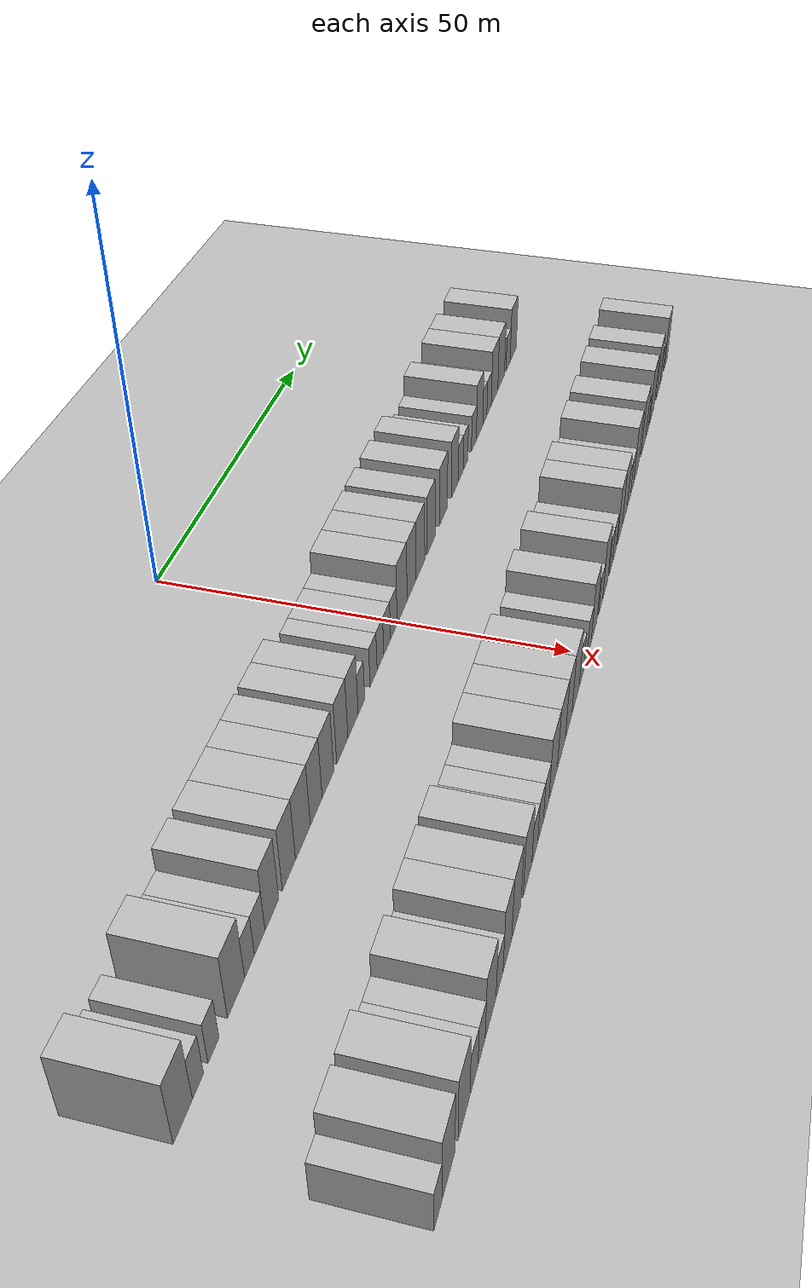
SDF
<sdf version="1.6">
 <world name="default">
  <include><name>ground_plane_1</name><uri>model://HANNAS_ground_plane</uri></include>
  <include>
   <name>ground_plane_2</name>
   <uri>model://HANNAS_ground_plane</uri>
   <pose>100 0 0  0 0 0</pose>
  </include>
  <model name="building_37">
   <static>1</static>
   <pose>25.0000 -64.8145 0 0.000000 0.000000 0.000000</pose>
   <link name="link">
    <pose>0 0 4.50 0 0 0</pose>
    <collision name="collision"><geometry><box><size>10.0000 4.0919 9.0000</size></box></geometry></collision>
    <visual name="visual">
     <cast_shadows>0</cast_shadows>
     <geometry><box><size>10.0000 4.0919 9.0000</size></box></geometry>
     <material>
      <script>
       <uri>model://HANNAS_wall/materials/scripts</uri>
       <uri>model://HANNAS_wall/materials/textures</uri>
       <name>vrc/HANNAS_wall</name>
      </script>
     </material>
    </visual>
   </link>
  </model>
  <model name="building_38">
   <static>1</static>
   <pose>25.0000 -61.5441 0 0.000000 0.000000 0.000000</pose>
   <link name="link">
    <pose>0 0 3.00 0 0 0</pose>
    <collision name="collision"><geometry><box><size>10.0000 2.4487 6.0000</size></box></geometry></collision>
    <visual name="visual">
     <cast_shadows>0</cast_shadows>
     <geometry><box><size>10.0000 2.4487 6.0000</size></box></geometry>
     <material>
      <script>
       <uri>model://HANNAS_wall/materials/scripts</uri>
       <uri>model://HANNAS_wall/materials/textures</uri>
       <name>vrc/HANNAS_wall</name>
      </script>
     </material>
    </visual>
   </link>
  </model>
  <model name="building_39">
   <static>1</static>
   <pose>25.0000 -58.0500 0 0.000000 0.000000 0.000000</pose>
   <link name="link">
    <pose>0 0 3.00 0 0 0</pose>
    <collision name="collision"><geometry><box><size>10.0000 2.5395 6.0000</size></box></geometry></collision>
    <visual name="visual">
     <cast_shadows>0</cast_shadows>
     <geometry><box><size>10.0000 2.5395 6.0000</size></box></geometry>
     <material>
      <script>
       <uri>model://HANNAS_wall/materials/scripts</uri>
       <uri>model://HANNAS_wall/materials/textures</uri>
       <name>vrc/HANNAS_wall</name>
      </script>
     </material>
    </visual>
   </link>
  </model>
  <model name="building_40">
   <static>1</static>
   <pose>25.0000 -52.6730 0 0.000000 0.000000 0.000000</pose>
   <link name="link">
    <pose>0 0 4.50 0 0 0</pose>
    <collision name="collision"><geometry><box><size>10.0000 4.2145 9.0000</size></box></geometry></collision>
    <visual name="visual">
     <cast_shadows>0</cast_shadows>
     <geometry><box><size>10.0000 4.2145 9.0000</size></box></geometry>
     <material>
      <script>
       <uri>model://HANNAS_wall/materials/scripts</uri>
       <uri>model://HANNAS_wall/materials/textures</uri>
       <name>vrc/HANNAS_wall</name>
      </script>
     </material>
    </visual>
   </link>
  </model>
  <model name="building_41">
   <static>1</static>
   <pose>25.0000 -49.3041 0 0.000000 0.000000 0.000000</pose>
   <link name="link">
    <pose>0 0 3.00 0 0 0</pose>
    <collision name="collision"><geometry><box><size>10.0000 2.5233 6.0000</size></box></geometry></collision>
    <visual name="visual">
     <cast_shadows>0</cast_shadows>
     <geometry><box><size>10.0000 2.5233 6.0000</size></box></geometry>
     <material>
      <script>
       <uri>model://HANNAS_wall/materials/scripts</uri>
       <uri>model://HANNAS_wall/materials/textures</uri>
       <name>vrc/HANNAS_wall</name>
      </script>
     </material>
    </visual>
   </link>
  </model>
  <model name="building_42">
   <static>1</static>
   <pose>25.0000 -46.6436 0 0.000000 0.000000 0.000000</pose>
   <link name="link">
    <pose>0 0 3.00 0 0 0</pose>
    <collision name="collision"><geometry><box><size>10.0000 2.7977 6.0000</size></box></geometry></collision>
    <visual name="visual">
     <cast_shadows>0</cast_shadows>
     <geometry><box><size>10.0000 2.7977 6.0000</size></box></geometry>
     <material>
      <script>
       <uri>model://HANNAS_wall/materials/scripts</uri>
       <uri>model://HANNAS_wall/materials/textures</uri>
       <name>vrc/HANNAS_wall</name>
      </script>
     </material>
    </visual>
   </link>
  </model>
  <model name="building_43">
   <static>1</static>
   <pose>25.0000 -43.3671 0 0.000000 0.000000 0.000000</pose>
   <link name="link">
    <pose>0 0 4.50 0 0 0</pose>
    <collision name="collision"><geometry><box><size>10.0000 3.7552 9.0000</size></box></geometry></collision>
    <visual name="visual">
     <cast_shadows>0</cast_shadows>
     <geometry><box><size>10.0000 3.7552 9.0000</size></box></geometry>
     <material>
      <script>
       <uri>model://HANNAS_wall/materials/scripts</uri>
       <uri>model://HANNAS_wall/materials/textures</uri>
       <name>vrc/HANNAS_wall</name>
      </script>
     </material>
    </visual>
   </link>
  </model>
  <model name="building_44">
   <static>1</static>
   <pose>25.0000 -38.5813 0 0.000000 0.000000 0.000000</pose>
   <link name="link">
    <pose>0 0 4.50 0 0 0</pose>
    <collision name="collision"><geometry><box><size>10.0000 3.8164 9.0000</size></box></geometry></collision>
    <visual name="visual">
     <cast_shadows>0</cast_shadows>
     <geometry><box><size>10.0000 3.8164 9.0000</size></box></geometry>
     <material>
      <script>
       <uri>model://HANNAS_wall/materials/scripts</uri>
       <uri>model://HANNAS_wall/materials/textures</uri>
       <name>vrc/HANNAS_wall</name>
      </script>
     </material>
    </visual>
   </link>
  </model>
  <model name="building_45">
   <static>1</static>
   <pose>25.0000 -34.4241 0 0.000000 0.000000 0.000000</pose>
   <link name="link">
    <pose>0 0 4.50 0 0 0</pose>
    <collision name="collision"><geometry><box><size>10.0000 4.4979 9.0000</size></box></geometry></collision>
    <visual name="visual">
     <cast_shadows>0</cast_shadows>
     <geometry><box><size>10.0000 4.4979 9.0000</size></box></geometry>
     <material>
      <script>
       <uri>model://HANNAS_wall/materials/scripts</uri>
       <uri>model://HANNAS_wall/materials/textures</uri>
       <name>vrc/HANNAS_wall</name>
      </script>
     </material>
    </visual>
   </link>
  </model>
  <model name="building_46">
   <static>1</static>
   <pose>25.0000 -30.3159 0 0.000000 0.000000 0.000000</pose>
   <link name="link">
    <pose>0 0 4.50 0 0 0</pose>
    <collision name="collision"><geometry><box><size>10.0000 3.7186 9.0000</size></box></geometry></collision>
    <visual name="visual">
     <cast_shadows>0</cast_shadows>
     <geometry><box><size>10.0000 3.7186 9.0000</size></box></geometry>
     <material>
      <script>
       <uri>model://HANNAS_wall/materials/scripts</uri>
       <uri>model://HANNAS_wall/materials/textures</uri>
       <name>vrc/HANNAS_wall</name>
      </script>
     </material>
    </visual>
   </link>
  </model>
  <model name="building_47">
   <static>1</static>
   <pose>25.0000 -26.5537 0 0.000000 0.000000 0.000000</pose>
   <link name="link">
    <pose>0 0 4.50 0 0 0</pose>
    <collision name="collision"><geometry><box><size>10.0000 3.8057 9.0000</size></box></geometry></collision>
    <visual name="visual">
     <cast_shadows>0</cast_shadows>
     <geometry><box><size>10.0000 3.8057 9.0000</size></box></geometry>
     <material>
      <script>
       <uri>model://HANNAS_wall/materials/scripts</uri>
       <uri>model://HANNAS_wall/materials/textures</uri>
       <name>vrc/HANNAS_wall</name>
      </script>
     </material>
    </visual>
   </link>
  </model>
  <model name="building_48">
   <static>1</static>
   <pose>25.0000 -21.7236 0 0.000000 0.000000 0.000000</pose>
   <link name="link">
    <pose>0 0 4.50 0 0 0</pose>
    <collision name="collision"><geometry><box><size>10.0000 3.8544 9.0000</size></box></geometry></collision>
    <visual name="visual">
     <cast_shadows>0</cast_shadows>
     <geometry><box><size>10.0000 3.8544 9.0000</size></box></geometry>
     <material>
      <script>
       <uri>model://HANNAS_wall/materials/scripts</uri>
       <uri>model://HANNAS_wall/materials/textures</uri>
       <name>vrc/HANNAS_wall</name>
      </script>
     </material>
    </visual>
   </link>
  </model>
  <model name="building_49">
   <static>1</static>
   <pose>25.0000 -17.9670 0 0.000000 0.000000 0.000000</pose>
   <link name="link">
    <pose>0 0 4.50 0 0 0</pose>
    <collision name="collision"><geometry><box><size>10.0000 3.6589 9.0000</size></box></geometry></collision>
    <visual name="visual">
     <cast_shadows>0</cast_shadows>
     <geometry><box><size>10.0000 3.6589 9.0000</size></box></geometry>
     <material>
      <script>
       <uri>model://HANNAS_wall/materials/scripts</uri>
       <uri>model://HANNAS_wall/materials/textures</uri>
       <name>vrc/HANNAS_wall</name>
      </script>
     </material>
    </visual>
   </link>
  </model>
  <model name="building_50">
   <static>1</static>
   <pose>25.0000 -14.9237 0 0.000000 0.000000 0.000000</pose>
   <link name="link">
    <pose>0 0 3.00 0 0 0</pose>
    <collision name="collision"><geometry><box><size>10.0000 2.4276 6.0000</size></box></geometry></collision>
    <visual name="visual">
     <cast_shadows>0</cast_shadows>
     <geometry><box><size>10.0000 2.4276 6.0000</size></box></geometry>
     <material>
      <script>
       <uri>model://HANNAS_wall/materials/scripts</uri>
       <uri>model://HANNAS_wall/materials/textures</uri>
       <name>vrc/HANNAS_wall</name>
      </script>
     </material>
    </visual>
   </link>
  </model>
  <model name="building_51">
   <static>1</static>
   <pose>25.0000 -10.3526 0 0.000000 0.000000 0.000000</pose>
   <link name="link">
    <pose>0 0 3.00 0 0 0</pose>
    <collision name="collision"><geometry><box><size>10.0000 2.7147 6.0000</size></box></geometry></collision>
    <visual name="visual">
     <cast_shadows>0</cast_shadows>
     <geometry><box><size>10.0000 2.7147 6.0000</size></box></geometry>
     <material>
      <script>
       <uri>model://HANNAS_wall/materials/scripts</uri>
       <uri>model://HANNAS_wall/materials/textures</uri>
       <name>vrc/HANNAS_wall</name>
      </script>
     </material>
    </visual>
   </link>
  </model>
  <model name="building_52">
   <static>1</static>
   <pose>25.0000 -7.6985 0 0.000000 0.000000 0.000000</pose>
   <link name="link">
    <pose>0 0 3.00 0 0 0</pose>
    <collision name="collision"><geometry><box><size>10.0000 2.5935 6.0000</size></box></geometry></collision>
    <visual name="visual">
     <cast_shadows>0</cast_shadows>
     <geometry><box><size>10.0000 2.5935 6.0000</size></box></geometry>
     <material>
      <script>
       <uri>model://HANNAS_wall/materials/scripts</uri>
       <uri>model://HANNAS_wall/materials/textures</uri>
       <name>vrc/HANNAS_wall</name>
      </script>
     </material>
    </visual>
   </link>
  </model>
  <model name="building_53">
   <static>1</static>
   <pose>25.0000 -5.0313 0 0.000000 0.000000 0.000000</pose>
   <link name="link">
    <pose>0 0 3.00 0 0 0</pose>
    <collision name="collision"><geometry><box><size>10.0000 2.7411 6.0000</size></box></geometry></collision>
    <visual name="visual">
     <cast_shadows>0</cast_shadows>
     <geometry><box><size>10.0000 2.7411 6.0000</size></box></geometry>
     <material>
      <script>
       <uri>model://HANNAS_wall/materials/scripts</uri>
       <uri>model://HANNAS_wall/materials/textures</uri>
       <name>vrc/HANNAS_wall</name>
      </script>
     </material>
    </visual>
   </link>
  </model>
  <model name="building_54">
   <static>1</static>
   <pose>25.0000 -2.2845 0 0.000000 0.000000 0.000000</pose>
   <link name="link">
    <pose>0 0 3.00 0 0 0</pose>
    <collision name="collision"><geometry><box><size>10.0000 2.7524 6.0000</size></box></geometry></collision>
    <visual name="visual">
     <cast_shadows>0</cast_shadows>
     <geometry><box><size>10.0000 2.7524 6.0000</size></box></geometry>
     <material>
      <script>
       <uri>model://HANNAS_wall/materials/scripts</uri>
       <uri>model://HANNAS_wall/materials/textures</uri>
       <name>vrc/HANNAS_wall</name>
      </script>
     </material>
    </visual>
   </link>
  </model>
  <model name="building_55">
   <static>1</static>
   <pose>25.0000 1.2587 0 0.000000 0.000000 0.000000</pose>
   <link name="link">
    <pose>0 0 4.50 0 0 0</pose>
    <collision name="collision"><geometry><box><size>10.0000 4.3340 9.0000</size></box></geometry></collision>
    <visual name="visual">
     <cast_shadows>0</cast_shadows>
     <geometry><box><size>10.0000 4.3340 9.0000</size></box></geometry>
     <material>
      <script>
       <uri>model://HANNAS_wall/materials/scripts</uri>
       <uri>model://HANNAS_wall/materials/textures</uri>
       <name>vrc/HANNAS_wall</name>
      </script>
     </material>
    </visual>
   </link>
  </model>
  <model name="building_56">
   <static>1</static>
   <pose>25.0000 5.4053 0 0.000000 0.000000 0.000000</pose>
   <link name="link">
    <pose>0 0 4.50 0 0 0</pose>
    <collision name="collision"><geometry><box><size>10.0000 3.9592 9.0000</size></box></geometry></collision>
    <visual name="visual">
     <cast_shadows>0</cast_shadows>
     <geometry><box><size>10.0000 3.9592 9.0000</size></box></geometry>
     <material>
      <script>
       <uri>model://HANNAS_wall/materials/scripts</uri>
       <uri>model://HANNAS_wall/materials/textures</uri>
       <name>vrc/HANNAS_wall</name>
      </script>
     </material>
    </visual>
   </link>
  </model>
  <model name="building_57">
   <static>1</static>
   <pose>25.0000 9.3750 0 0.000000 0.000000 0.000000</pose>
   <link name="link">
    <pose>0 0 4.50 0 0 0</pose>
    <collision name="collision"><geometry><box><size>10.0000 3.9802 9.0000</size></box></geometry></collision>
    <visual name="visual">
     <cast_shadows>0</cast_shadows>
     <geometry><box><size>10.0000 3.9802 9.0000</size></box></geometry>
     <material>
      <script>
       <uri>model://HANNAS_wall/materials/scripts</uri>
       <uri>model://HANNAS_wall/materials/textures</uri>
       <name>vrc/HANNAS_wall</name>
      </script>
     </material>
    </visual>
   </link>
  </model>
  <model name="building_58">
   <static>1</static>
   <pose>25.0000 14.3547 0 0.000000 0.000000 0.000000</pose>
   <link name="link">
    <pose>0 0 4.50 0 0 0</pose>
    <collision name="collision"><geometry><box><size>10.0000 3.9792 9.0000</size></box></geometry></collision>
    <visual name="visual">
     <cast_shadows>0</cast_shadows>
     <geometry><box><size>10.0000 3.9792 9.0000</size></box></geometry>
     <material>
      <script>
       <uri>model://HANNAS_wall/materials/scripts</uri>
       <uri>model://HANNAS_wall/materials/textures</uri>
       <name>vrc/HANNAS_wall</name>
      </script>
     </material>
    </visual>
   </link>
  </model>
  <model name="building_59">
   <static>1</static>
   <pose>25.0000 20.4236 0 0.000000 0.000000 0.000000</pose>
   <link name="link">
    <pose>0 0 4.50 0 0 0</pose>
    <collision name="collision"><geometry><box><size>10.0000 4.1587 9.0000</size></box></geometry></collision>
    <visual name="visual">
     <cast_shadows>0</cast_shadows>
     <geometry><box><size>10.0000 4.1587 9.0000</size></box></geometry>
     <material>
      <script>
       <uri>model://HANNAS_wall/materials/scripts</uri>
       <uri>model://HANNAS_wall/materials/textures</uri>
       <name>vrc/HANNAS_wall</name>
      </script>
     </material>
    </visual>
   </link>
  </model>
  <model name="building_60">
   <static>1</static>
   <pose>25.0000 26.3561 0 0.000000 0.000000 0.000000</pose>
   <link name="link">
    <pose>0 0 4.50 0 0 0</pose>
    <collision name="collision"><geometry><box><size>10.0000 3.7063 9.0000</size></box></geometry></collision>
    <visual name="visual">
     <cast_shadows>0</cast_shadows>
     <geometry><box><size>10.0000 3.7063 9.0000</size></box></geometry>
     <material>
      <script>
       <uri>model://HANNAS_wall/materials/scripts</uri>
       <uri>model://HANNAS_wall/materials/textures</uri>
       <name>vrc/HANNAS_wall</name>
      </script>
     </material>
    </visual>
   </link>
  </model>
  <model name="building_61">
   <static>1</static>
   <pose>25.0000 29.5430 0 0.000000 0.000000 0.000000</pose>
   <link name="link">
    <pose>0 0 3.00 0 0 0</pose>
    <collision name="collision"><geometry><box><size>10.0000 2.6675 6.0000</size></box></geometry></collision>
    <visual name="visual">
     <cast_shadows>0</cast_shadows>
     <geometry><box><size>10.0000 2.6675 6.0000</size></box></geometry>
     <material>
      <script>
       <uri>model://HANNAS_wall/materials/scripts</uri>
       <uri>model://HANNAS_wall/materials/textures</uri>
       <name>vrc/HANNAS_wall</name>
      </script>
     </material>
    </visual>
   </link>
  </model>
  <model name="building_62">
   <static>1</static>
   <pose>25.0000 32.1469 0 0.000000 0.000000 0.000000</pose>
   <link name="link">
    <pose>0 0 3.00 0 0 0</pose>
    <collision name="collision"><geometry><box><size>10.0000 2.5403 6.0000</size></box></geometry></collision>
    <visual name="visual">
     <cast_shadows>0</cast_shadows>
     <geometry><box><size>10.0000 2.5403 6.0000</size></box></geometry>
     <material>
      <script>
       <uri>model://HANNAS_wall/materials/scripts</uri>
       <uri>model://HANNAS_wall/materials/textures</uri>
       <name>vrc/HANNAS_wall</name>
      </script>
     </material>
    </visual>
   </link>
  </model>
  <model name="building_63">
   <static>1</static>
   <pose>25.0000 36.8411 0 0.000000 0.000000 0.000000</pose>
   <link name="link">
    <pose>0 0 3.00 0 0 0</pose>
    <collision name="collision"><geometry><box><size>10.0000 2.8481 6.0000</size></box></geometry></collision>
    <visual name="visual">
     <cast_shadows>0</cast_shadows>
     <geometry><box><size>10.0000 2.8481 6.0000</size></box></geometry>
     <material>
      <script>
       <uri>model://HANNAS_wall/materials/scripts</uri>
       <uri>model://HANNAS_wall/materials/textures</uri>
       <name>vrc/HANNAS_wall</name>
      </script>
     </material>
    </visual>
   </link>
  </model>
  <model name="building_64">
   <static>1</static>
   <pose>25.0000 40.1556 0 0.000000 0.000000 0.000000</pose>
   <link name="link">
    <pose>0 0 4.50 0 0 0</pose>
    <collision name="collision"><geometry><box><size>10.0000 3.7809 9.0000</size></box></geometry></collision>
    <visual name="visual">
     <cast_shadows>0</cast_shadows>
     <geometry><box><size>10.0000 3.7809 9.0000</size></box></geometry>
     <material>
      <script>
       <uri>model://HANNAS_wall/materials/scripts</uri>
       <uri>model://HANNAS_wall/materials/textures</uri>
       <name>vrc/HANNAS_wall</name>
      </script>
     </material>
    </visual>
   </link>
  </model>
  <model name="building_65">
   <static>1</static>
   <pose>25.0000 43.2814 0 0.000000 0.000000 0.000000</pose>
   <link name="link">
    <pose>0 0 3.00 0 0 0</pose>
    <collision name="collision"><geometry><box><size>10.0000 2.4706 6.0000</size></box></geometry></collision>
    <visual name="visual">
     <cast_shadows>0</cast_shadows>
     <geometry><box><size>10.0000 2.4706 6.0000</size></box></geometry>
     <material>
      <script>
       <uri>model://HANNAS_wall/materials/scripts</uri>
       <uri>model://HANNAS_wall/materials/textures</uri>
       <name>vrc/HANNAS_wall</name>
      </script>
     </material>
    </visual>
   </link>
  </model>
  <model name="building_66">
   <static>1</static>
   <pose>25.0000 45.8824 0 0.000000 0.000000 0.000000</pose>
   <link name="link">
    <pose>0 0 3.00 0 0 0</pose>
    <collision name="collision"><geometry><box><size>10.0000 2.7314 6.0000</size></box></geometry></collision>
    <visual name="visual">
     <cast_shadows>0</cast_shadows>
     <geometry><box><size>10.0000 2.7314 6.0000</size></box></geometry>
     <material>
      <script>
       <uri>model://HANNAS_wall/materials/scripts</uri>
       <uri>model://HANNAS_wall/materials/textures</uri>
       <name>vrc/HANNAS_wall</name>
      </script>
     </material>
    </visual>
   </link>
  </model>
  <model name="building_67">
   <static>1</static>
   <pose>25.0000 49.3234 0 0.000000 0.000000 0.000000</pose>
   <link name="link">
    <pose>0 0 4.50 0 0 0</pose>
    <collision name="collision"><geometry><box><size>10.0000 4.1507 9.0000</size></box></geometry></collision>
    <visual name="visual">
     <cast_shadows>0</cast_shadows>
     <geometry><box><size>10.0000 4.1507 9.0000</size></box></geometry>
     <material>
      <script>
       <uri>model://HANNAS_wall/materials/scripts</uri>
       <uri>model://HANNAS_wall/materials/textures</uri>
       <name>vrc/HANNAS_wall</name>
      </script>
     </material>
    </visual>
   </link>
  </model>
  <model name="building_68">
   <static>1</static>
   <pose>25.0000 53.5779 0 0.000000 0.000000 0.000000</pose>
   <link name="link">
    <pose>0 0 4.50 0 0 0</pose>
    <collision name="collision"><geometry><box><size>10.0000 4.3583 9.0000</size></box></geometry></collision>
    <visual name="visual">
     <cast_shadows>0</cast_shadows>
     <geometry><box><size>10.0000 4.3583 9.0000</size></box></geometry>
     <material>
      <script>
       <uri>model://HANNAS_wall/materials/scripts</uri>
       <uri>model://HANNAS_wall/materials/textures</uri>
       <name>vrc/HANNAS_wall</name>
      </script>
     </material>
    </visual>
   </link>
  </model>
  <model name="building_69">
   <static>1</static>
   <pose>25.0000 58.1342 0 0.000000 0.000000 0.000000</pose>
   <link name="link">
    <pose>0 0 3.00 0 0 0</pose>
    <collision name="collision"><geometry><box><size>10.0000 2.7543 6.0000</size></box></geometry></collision>
    <visual name="visual">
     <cast_shadows>0</cast_shadows>
     <geometry><box><size>10.0000 2.7543 6.0000</size></box></geometry>
     <material>
      <script>
       <uri>model://HANNAS_wall/materials/scripts</uri>
       <uri>model://HANNAS_wall/materials/textures</uri>
       <name>vrc/HANNAS_wall</name>
      </script>
     </material>
    </visual>
   </link>
  </model>
  <model name="building_70">
   <static>1</static>
   <pose>25.0000 61.6448 0 0.000000 0.000000 0.000000</pose>
   <link name="link">
    <pose>0 0 4.50 0 0 0</pose>
    <collision name="collision"><geometry><box><size>10.0000 4.2669 9.0000</size></box></geometry></collision>
    <visual name="visual">
     <cast_shadows>0</cast_shadows>
     <geometry><box><size>10.0000 4.2669 9.0000</size></box></geometry>
     <material>
      <script>
       <uri>model://HANNAS_wall/materials/scripts</uri>
       <uri>model://HANNAS_wall/materials/textures</uri>
       <name>vrc/HANNAS_wall</name>
      </script>
     </material>
    </visual>
   </link>
  </model>
  <model name="building_137">
   <static>1</static>
   <pose>47.0000 -67.2722 0 0.000000 0.000000 0.000000</pose>
   <link name="link">
    <pose>0 0 3.00 0 0 0</pose>
    <collision name="collision"><geometry><box><size>10.0000 2.4675 6.0000</size></box></geometry></collision>
    <visual name="visual">
     <cast_shadows>0</cast_shadows>
     <geometry><box><size>10.0000 2.4675 6.0000</size></box></geometry>
     <material>
      <script>
       <uri>model://HANNAS_wall/materials/scripts</uri>
       <uri>model://HANNAS_wall/materials/textures</uri>
       <name>vrc/HANNAS_wall</name>
      </script>
     </material>
    </visual>
   </link>
  </model>
  <model name="building_138">
   <static>1</static>
   <pose>47.0000 -63.9435 0 0.000000 0.000000 0.000000</pose>
   <link name="link">
    <pose>0 0 4.50 0 0 0</pose>
    <collision name="collision"><geometry><box><size>10.0000 4.1899 9.0000</size></box></geometry></collision>
    <visual name="visual">
     <cast_shadows>0</cast_shadows>
     <geometry><box><size>10.0000 4.1899 9.0000</size></box></geometry>
     <material>
      <script>
       <uri>model://HANNAS_wall/materials/scripts</uri>
       <uri>model://HANNAS_wall/materials/textures</uri>
       <name>vrc/HANNAS_wall</name>
      </script>
     </material>
    </visual>
   </link>
  </model>
  <model name="building_139">
   <static>1</static>
   <pose>47.0000 -58.7957 0 0.000000 0.000000 0.000000</pose>
   <link name="link">
    <pose>0 0 4.50 0 0 0</pose>
    <collision name="collision"><geometry><box><size>10.0000 4.1057 9.0000</size></box></geometry></collision>
    <visual name="visual">
     <cast_shadows>0</cast_shadows>
     <geometry><box><size>10.0000 4.1057 9.0000</size></box></geometry>
     <material>
      <script>
       <uri>model://HANNAS_wall/materials/scripts</uri>
       <uri>model://HANNAS_wall/materials/textures</uri>
       <name>vrc/HANNAS_wall</name>
      </script>
     </material>
    </visual>
   </link>
  </model>
  <model name="building_140">
   <static>1</static>
   <pose>47.0000 -55.3020 0 0.000000 0.000000 0.000000</pose>
   <link name="link">
    <pose>0 0 3.00 0 0 0</pose>
    <collision name="collision"><geometry><box><size>10.0000 2.8819 6.0000</size></box></geometry></collision>
    <visual name="visual">
     <cast_shadows>0</cast_shadows>
     <geometry><box><size>10.0000 2.8819 6.0000</size></box></geometry>
     <material>
      <script>
       <uri>model://HANNAS_wall/materials/scripts</uri>
       <uri>model://HANNAS_wall/materials/textures</uri>
       <name>vrc/HANNAS_wall</name>
      </script>
     </material>
    </visual>
   </link>
  </model>
  <model name="building_141">
   <static>1</static>
   <pose>47.0000 -52.5414 0 0.000000 0.000000 0.000000</pose>
   <link name="link">
    <pose>0 0 3.00 0 0 0</pose>
    <collision name="collision"><geometry><box><size>10.0000 2.6392 6.0000</size></box></geometry></collision>
    <visual name="visual">
     <cast_shadows>0</cast_shadows>
     <geometry><box><size>10.0000 2.6392 6.0000</size></box></geometry>
     <material>
      <script>
       <uri>model://HANNAS_wall/materials/scripts</uri>
       <uri>model://HANNAS_wall/materials/textures</uri>
       <name>vrc/HANNAS_wall</name>
      </script>
     </material>
    </visual>
   </link>
  </model>
  <model name="building_142">
   <static>1</static>
   <pose>47.0000 -49.1384 0 0.000000 0.000000 0.000000</pose>
   <link name="link">
    <pose>0 0 4.50 0 0 0</pose>
    <collision name="collision"><geometry><box><size>10.0000 4.1668 9.0000</size></box></geometry></collision>
    <visual name="visual">
     <cast_shadows>0</cast_shadows>
     <geometry><box><size>10.0000 4.1668 9.0000</size></box></geometry>
     <material>
      <script>
       <uri>model://HANNAS_wall/materials/scripts</uri>
       <uri>model://HANNAS_wall/materials/textures</uri>
       <name>vrc/HANNAS_wall</name>
      </script>
     </material>
    </visual>
   </link>
  </model>
  <model name="building_143">
   <static>1</static>
   <pose>47.0000 -45.6333 0 0.000000 0.000000 0.000000</pose>
   <link name="link">
    <pose>0 0 3.00 0 0 0</pose>
    <collision name="collision"><geometry><box><size>10.0000 2.8433 6.0000</size></box></geometry></collision>
    <visual name="visual">
     <cast_shadows>0</cast_shadows>
     <geometry><box><size>10.0000 2.8433 6.0000</size></box></geometry>
     <material>
      <script>
       <uri>model://HANNAS_wall/materials/scripts</uri>
       <uri>model://HANNAS_wall/materials/textures</uri>
       <name>vrc/HANNAS_wall</name>
      </script>
     </material>
    </visual>
   </link>
  </model>
  <model name="building_144">
   <static>1</static>
   <pose>47.0000 -42.4066 0 0.000000 0.000000 0.000000</pose>
   <link name="link">
    <pose>0 0 4.50 0 0 0</pose>
    <collision name="collision"><geometry><box><size>10.0000 3.6101 9.0000</size></box></geometry></collision>
    <visual name="visual">
     <cast_shadows>0</cast_shadows>
     <geometry><box><size>10.0000 3.6101 9.0000</size></box></geometry>
     <material>
      <script>
       <uri>model://HANNAS_wall/materials/scripts</uri>
       <uri>model://HANNAS_wall/materials/textures</uri>
       <name>vrc/HANNAS_wall</name>
      </script>
     </material>
    </visual>
   </link>
  </model>
  <model name="building_145">
   <static>1</static>
   <pose>47.0000 -38.6222 0 0.000000 0.000000 0.000000</pose>
   <link name="link">
    <pose>0 0 4.50 0 0 0</pose>
    <collision name="collision"><geometry><box><size>10.0000 3.9587 9.0000</size></box></geometry></collision>
    <visual name="visual">
     <cast_shadows>0</cast_shadows>
     <geometry><box><size>10.0000 3.9587 9.0000</size></box></geometry>
     <material>
      <script>
       <uri>model://HANNAS_wall/materials/scripts</uri>
       <uri>model://HANNAS_wall/materials/textures</uri>
       <name>vrc/HANNAS_wall</name>
      </script>
     </material>
    </visual>
   </link>
  </model>
  <model name="building_146">
   <static>1</static>
   <pose>47.0000 -33.6433 0 0.000000 0.000000 0.000000</pose>
   <link name="link">
    <pose>0 0 4.50 0 0 0</pose>
    <collision name="collision"><geometry><box><size>10.0000 3.9992 9.0000</size></box></geometry></collision>
    <visual name="visual">
     <cast_shadows>0</cast_shadows>
     <geometry><box><size>10.0000 3.9992 9.0000</size></box></geometry>
     <material>
      <script>
       <uri>model://HANNAS_wall/materials/scripts</uri>
       <uri>model://HANNAS_wall/materials/textures</uri>
       <name>vrc/HANNAS_wall</name>
      </script>
     </material>
    </visual>
   </link>
  </model>
  <model name="building_147">
   <static>1</static>
   <pose>47.0000 -30.1826 0 0.000000 0.000000 0.000000</pose>
   <link name="link">
    <pose>0 0 3.00 0 0 0</pose>
    <collision name="collision"><geometry><box><size>10.0000 2.9220 6.0000</size></box></geometry></collision>
    <visual name="visual">
     <cast_shadows>0</cast_shadows>
     <geometry><box><size>10.0000 2.9220 6.0000</size></box></geometry>
     <material>
      <script>
       <uri>model://HANNAS_wall/materials/scripts</uri>
       <uri>model://HANNAS_wall/materials/textures</uri>
       <name>vrc/HANNAS_wall</name>
      </script>
     </material>
    </visual>
   </link>
  </model>
  <model name="building_148">
   <static>1</static>
   <pose>47.0000 -27.3471 0 0.000000 0.000000 0.000000</pose>
   <link name="link">
    <pose>0 0 3.00 0 0 0</pose>
    <collision name="collision"><geometry><box><size>10.0000 2.7490 6.0000</size></box></geometry></collision>
    <visual name="visual">
     <cast_shadows>0</cast_shadows>
     <geometry><box><size>10.0000 2.7490 6.0000</size></box></geometry>
     <material>
      <script>
       <uri>model://HANNAS_wall/materials/scripts</uri>
       <uri>model://HANNAS_wall/materials/textures</uri>
       <name>vrc/HANNAS_wall</name>
      </script>
     </material>
    </visual>
   </link>
  </model>
  <model name="building_149">
   <static>1</static>
   <pose>47.0000 -24.5468 0 0.000000 0.000000 0.000000</pose>
   <link name="link">
    <pose>0 0 3.00 0 0 0</pose>
    <collision name="collision"><geometry><box><size>10.0000 2.8516 6.0000</size></box></geometry></collision>
    <visual name="visual">
     <cast_shadows>0</cast_shadows>
     <geometry><box><size>10.0000 2.8516 6.0000</size></box></geometry>
     <material>
      <script>
       <uri>model://HANNAS_wall/materials/scripts</uri>
       <uri>model://HANNAS_wall/materials/textures</uri>
       <name>vrc/HANNAS_wall</name>
      </script>
     </material>
    </visual>
   </link>
  </model>
  <model name="building_150">
   <static>1</static>
   <pose>47.0000 -20.9194 0 0.000000 0.000000 0.000000</pose>
   <link name="link">
    <pose>0 0 4.50 0 0 0</pose>
    <collision name="collision"><geometry><box><size>10.0000 4.4033 9.0000</size></box></geometry></collision>
    <visual name="visual">
     <cast_shadows>0</cast_shadows>
     <geometry><box><size>10.0000 4.4033 9.0000</size></box></geometry>
     <material>
      <script>
       <uri>model://HANNAS_wall/materials/scripts</uri>
       <uri>model://HANNAS_wall/materials/textures</uri>
       <name>vrc/HANNAS_wall</name>
      </script>
     </material>
    </visual>
   </link>
  </model>
  <model name="building_151">
   <static>1</static>
   <pose>47.0000 -16.5003 0 0.000000 0.000000 0.000000</pose>
   <link name="link">
    <pose>0 0 4.50 0 0 0</pose>
    <collision name="collision"><geometry><box><size>10.0000 4.4348 9.0000</size></box></geometry></collision>
    <visual name="visual">
     <cast_shadows>0</cast_shadows>
     <geometry><box><size>10.0000 4.4348 9.0000</size></box></geometry>
     <material>
      <script>
       <uri>model://HANNAS_wall/materials/scripts</uri>
       <uri>model://HANNAS_wall/materials/textures</uri>
       <name>vrc/HANNAS_wall</name>
      </script>
     </material>
    </visual>
   </link>
  </model>
  <model name="building_152">
   <static>1</static>
   <pose>47.0000 -12.4149 0 0.000000 0.000000 0.000000</pose>
   <link name="link">
    <pose>0 0 4.50 0 0 0</pose>
    <collision name="collision"><geometry><box><size>10.0000 3.7361 9.0000</size></box></geometry></collision>
    <visual name="visual">
     <cast_shadows>0</cast_shadows>
     <geometry><box><size>10.0000 3.7361 9.0000</size></box></geometry>
     <material>
      <script>
       <uri>model://HANNAS_wall/materials/scripts</uri>
       <uri>model://HANNAS_wall/materials/textures</uri>
       <name>vrc/HANNAS_wall</name>
      </script>
     </material>
    </visual>
   </link>
  </model>
  <model name="building_153">
   <static>1</static>
   <pose>47.0000 -8.3822 0 0.000000 0.000000 0.000000</pose>
   <link name="link">
    <pose>0 0 4.50 0 0 0</pose>
    <collision name="collision"><geometry><box><size>10.0000 4.3292 9.0000</size></box></geometry></collision>
    <visual name="visual">
     <cast_shadows>0</cast_shadows>
     <geometry><box><size>10.0000 4.3292 9.0000</size></box></geometry>
     <material>
      <script>
       <uri>model://HANNAS_wall/materials/scripts</uri>
       <uri>model://HANNAS_wall/materials/textures</uri>
       <name>vrc/HANNAS_wall</name>
      </script>
     </material>
    </visual>
   </link>
  </model>
  <model name="building_154">
   <static>1</static>
   <pose>47.0000 -4.7877 0 0.000000 0.000000 0.000000</pose>
   <link name="link">
    <pose>0 0 3.00 0 0 0</pose>
    <collision name="collision"><geometry><box><size>10.0000 2.8599 6.0000</size></box></geometry></collision>
    <visual name="visual">
     <cast_shadows>0</cast_shadows>
     <geometry><box><size>10.0000 2.8599 6.0000</size></box></geometry>
     <material>
      <script>
       <uri>model://HANNAS_wall/materials/scripts</uri>
       <uri>model://HANNAS_wall/materials/textures</uri>
       <name>vrc/HANNAS_wall</name>
      </script>
     </material>
    </visual>
   </link>
  </model>
  <model name="building_155">
   <static>1</static>
   <pose>47.0000 0.0108 0 0.000000 0.000000 0.000000</pose>
   <link name="link">
    <pose>0 0 3.00 0 0 0</pose>
    <collision name="collision"><geometry><box><size>10.0000 2.7372 6.0000</size></box></geometry></collision>
    <visual name="visual">
     <cast_shadows>0</cast_shadows>
     <geometry><box><size>10.0000 2.7372 6.0000</size></box></geometry>
     <material>
      <script>
       <uri>model://HANNAS_wall/materials/scripts</uri>
       <uri>model://HANNAS_wall/materials/textures</uri>
       <name>vrc/HANNAS_wall</name>
      </script>
     </material>
    </visual>
   </link>
  </model>
  <model name="building_156">
   <static>1</static>
   <pose>47.0000 3.3587 0 0.000000 0.000000 0.000000</pose>
   <link name="link">
    <pose>0 0 4.50 0 0 0</pose>
    <collision name="collision"><geometry><box><size>10.0000 3.9584 9.0000</size></box></geometry></collision>
    <visual name="visual">
     <cast_shadows>0</cast_shadows>
     <geometry><box><size>10.0000 3.9584 9.0000</size></box></geometry>
     <material>
      <script>
       <uri>model://HANNAS_wall/materials/scripts</uri>
       <uri>model://HANNAS_wall/materials/textures</uri>
       <name>vrc/HANNAS_wall</name>
      </script>
     </material>
    </visual>
   </link>
  </model>
  <model name="building_157">
   <static>1</static>
   <pose>47.0000 7.7494 0 0.000000 0.000000 0.000000</pose>
   <link name="link">
    <pose>0 0 3.00 0 0 0</pose>
    <collision name="collision"><geometry><box><size>10.0000 2.8231 6.0000</size></box></geometry></collision>
    <visual name="visual">
     <cast_shadows>0</cast_shadows>
     <geometry><box><size>10.0000 2.8231 6.0000</size></box></geometry>
     <material>
      <script>
       <uri>model://HANNAS_wall/materials/scripts</uri>
       <uri>model://HANNAS_wall/materials/textures</uri>
       <name>vrc/HANNAS_wall</name>
      </script>
     </material>
    </visual>
   </link>
  </model>
  <model name="building_158">
   <static>1</static>
   <pose>47.0000 11.0119 0 0.000000 0.000000 0.000000</pose>
   <link name="link">
    <pose>0 0 4.50 0 0 0</pose>
    <collision name="collision"><geometry><box><size>10.0000 3.7017 9.0000</size></box></geometry></collision>
    <visual name="visual">
     <cast_shadows>0</cast_shadows>
     <geometry><box><size>10.0000 3.7017 9.0000</size></box></geometry>
     <material>
      <script>
       <uri>model://HANNAS_wall/materials/scripts</uri>
       <uri>model://HANNAS_wall/materials/textures</uri>
       <name>vrc/HANNAS_wall</name>
      </script>
     </material>
    </visual>
   </link>
  </model>
  <model name="building_159">
   <static>1</static>
   <pose>47.0000 15.0771 0 0.000000 0.000000 0.000000</pose>
   <link name="link">
    <pose>0 0 3.00 0 0 0</pose>
    <collision name="collision"><geometry><box><size>10.0000 2.4288 6.0000</size></box></geometry></collision>
    <visual name="visual">
     <cast_shadows>0</cast_shadows>
     <geometry><box><size>10.0000 2.4288 6.0000</size></box></geometry>
     <material>
      <script>
       <uri>model://HANNAS_wall/materials/scripts</uri>
       <uri>model://HANNAS_wall/materials/textures</uri>
       <name>vrc/HANNAS_wall</name>
      </script>
     </material>
    </visual>
   </link>
  </model>
  <model name="building_160">
   <static>1</static>
   <pose>47.0000 17.6496 0 0.000000 0.000000 0.000000</pose>
   <link name="link">
    <pose>0 0 3.00 0 0 0</pose>
    <collision name="collision"><geometry><box><size>10.0000 2.7161 6.0000</size></box></geometry></collision>
    <visual name="visual">
     <cast_shadows>0</cast_shadows>
     <geometry><box><size>10.0000 2.7161 6.0000</size></box></geometry>
     <material>
      <script>
       <uri>model://HANNAS_wall/materials/scripts</uri>
       <uri>model://HANNAS_wall/materials/textures</uri>
       <name>vrc/HANNAS_wall</name>
      </script>
     </material>
    </visual>
   </link>
  </model>
  <model name="building_161">
   <static>1</static>
   <pose>47.0000 21.9325 0 0.000000 0.000000 0.000000</pose>
   <link name="link">
    <pose>0 0 4.50 0 0 0</pose>
    <collision name="collision"><geometry><box><size>10.0000 3.8498 9.0000</size></box></geometry></collision>
    <visual name="visual">
     <cast_shadows>0</cast_shadows>
     <geometry><box><size>10.0000 3.8498 9.0000</size></box></geometry>
     <material>
      <script>
       <uri>model://HANNAS_wall/materials/scripts</uri>
       <uri>model://HANNAS_wall/materials/textures</uri>
       <name>vrc/HANNAS_wall</name>
      </script>
     </material>
    </visual>
   </link>
  </model>
  <model name="building_162">
   <static>1</static>
   <pose>47.0000 25.8554 0 0.000000 0.000000 0.000000</pose>
   <link name="link">
    <pose>0 0 4.50 0 0 0</pose>
    <collision name="collision"><geometry><box><size>10.0000 3.9960 9.0000</size></box></geometry></collision>
    <visual name="visual">
     <cast_shadows>0</cast_shadows>
     <geometry><box><size>10.0000 3.9960 9.0000</size></box></geometry>
     <material>
      <script>
       <uri>model://HANNAS_wall/materials/scripts</uri>
       <uri>model://HANNAS_wall/materials/textures</uri>
       <name>vrc/HANNAS_wall</name>
      </script>
     </material>
    </visual>
   </link>
  </model>
  <model name="building_163">
   <static>1</static>
   <pose>47.0000 29.3057 0 0.000000 0.000000 0.000000</pose>
   <link name="link">
    <pose>0 0 3.00 0 0 0</pose>
    <collision name="collision"><geometry><box><size>10.0000 2.9046 6.0000</size></box></geometry></collision>
    <visual name="visual">
     <cast_shadows>0</cast_shadows>
     <geometry><box><size>10.0000 2.9046 6.0000</size></box></geometry>
     <material>
      <script>
       <uri>model://HANNAS_wall/materials/scripts</uri>
       <uri>model://HANNAS_wall/materials/textures</uri>
       <name>vrc/HANNAS_wall</name>
      </script>
     </material>
    </visual>
   </link>
  </model>
  <model name="building_164">
   <static>1</static>
   <pose>47.0000 32.1098 0 0.000000 0.000000 0.000000</pose>
   <link name="link">
    <pose>0 0 3.00 0 0 0</pose>
    <collision name="collision"><geometry><box><size>10.0000 2.7035 6.0000</size></box></geometry></collision>
    <visual name="visual">
     <cast_shadows>0</cast_shadows>
     <geometry><box><size>10.0000 2.7035 6.0000</size></box></geometry>
     <material>
      <script>
       <uri>model://HANNAS_wall/materials/scripts</uri>
       <uri>model://HANNAS_wall/materials/textures</uri>
       <name>vrc/HANNAS_wall</name>
      </script>
     </material>
    </visual>
   </link>
  </model>
  <model name="building_165">
   <static>1</static>
   <pose>47.0000 35.6335 0 0.000000 0.000000 0.000000</pose>
   <link name="link">
    <pose>0 0 4.50 0 0 0</pose>
    <collision name="collision"><geometry><box><size>10.0000 4.3438 9.0000</size></box></geometry></collision>
    <visual name="visual">
     <cast_shadows>0</cast_shadows>
     <geometry><box><size>10.0000 4.3438 9.0000</size></box></geometry>
     <material>
      <script>
       <uri>model://HANNAS_wall/materials/scripts</uri>
       <uri>model://HANNAS_wall/materials/textures</uri>
       <name>vrc/HANNAS_wall</name>
      </script>
     </material>
    </visual>
   </link>
  </model>
  <model name="building_166">
   <static>1</static>
   <pose>47.0000 41.9864 0 0.000000 0.000000 0.000000</pose>
   <link name="link">
    <pose>0 0 4.50 0 0 0</pose>
    <collision name="collision"><geometry><box><size>10.0000 4.3619 9.0000</size></box></geometry></collision>
    <visual name="visual">
     <cast_shadows>0</cast_shadows>
     <geometry><box><size>10.0000 4.3619 9.0000</size></box></geometry>
     <material>
      <script>
       <uri>model://HANNAS_wall/materials/scripts</uri>
       <uri>model://HANNAS_wall/materials/textures</uri>
       <name>vrc/HANNAS_wall</name>
      </script>
     </material>
    </visual>
   </link>
  </model>
  <model name="building_167">
   <static>1</static>
   <pose>47.0000 45.4864 0 0.000000 0.000000 0.000000</pose>
   <link name="link">
    <pose>0 0 3.00 0 0 0</pose>
    <collision name="collision"><geometry><box><size>10.0000 2.6381 6.0000</size></box></geometry></collision>
    <visual name="visual">
     <cast_shadows>0</cast_shadows>
     <geometry><box><size>10.0000 2.6381 6.0000</size></box></geometry>
     <material>
      <script>
       <uri>model://HANNAS_wall/materials/scripts</uri>
       <uri>model://HANNAS_wall/materials/textures</uri>
       <name>vrc/HANNAS_wall</name>
      </script>
     </material>
    </visual>
   </link>
  </model>
  <model name="building_168">
   <static>1</static>
   <pose>47.0000 49.9939 0 0.000000 0.000000 0.000000</pose>
   <link name="link">
    <pose>0 0 4.50 0 0 0</pose>
    <collision name="collision"><geometry><box><size>10.0000 4.3769 9.0000</size></box></geometry></collision>
    <visual name="visual">
     <cast_shadows>0</cast_shadows>
     <geometry><box><size>10.0000 4.3769 9.0000</size></box></geometry>
     <material>
      <script>
       <uri>model://HANNAS_wall/materials/scripts</uri>
       <uri>model://HANNAS_wall/materials/textures</uri>
       <name>vrc/HANNAS_wall</name>
      </script>
     </material>
    </visual>
   </link>
  </model>
  <model name="building_169">
   <static>1</static>
   <pose>47.0000 56.1371 0 0.000000 0.000000 0.000000</pose>
   <link name="link">
    <pose>0 0 4.50 0 0 0</pose>
    <collision name="collision"><geometry><box><size>10.0000 3.9094 9.0000</size></box></geometry></collision>
    <visual name="visual">
     <cast_shadows>0</cast_shadows>
     <geometry><box><size>10.0000 3.9094 9.0000</size></box></geometry>
     <material>
      <script>
       <uri>model://HANNAS_wall/materials/scripts</uri>
       <uri>model://HANNAS_wall/materials/textures</uri>
       <name>vrc/HANNAS_wall</name>
      </script>
     </material>
    </visual>
   </link>
  </model>
  <model name="building_170">
   <static>1</static>
   <pose>47.0000 59.3757 0 0.000000 0.000000 0.000000</pose>
   <link name="link">
    <pose>0 0 3.00 0 0 0</pose>
    <collision name="collision"><geometry><box><size>10.0000 2.5678 6.0000</size></box></geometry></collision>
    <visual name="visual">
     <cast_shadows>0</cast_shadows>
     <geometry><box><size>10.0000 2.5678 6.0000</size></box></geometry>
     <material>
      <script>
       <uri>model://HANNAS_wall/materials/scripts</uri>
       <uri>model://HANNAS_wall/materials/textures</uri>
       <name>vrc/HANNAS_wall</name>
      </script>
     </material>
    </visual>
   </link>
  </model>
  <model name="building_171">
   <static>1</static>
   <pose>47.0000 64.5097 0 0.000000 0.000000 0.000000</pose>
   <link name="link">
    <pose>0 0 4.50 0 0 0</pose>
    <collision name="collision"><geometry><box><size>10.0000 3.7004 9.0000</size></box></geometry></collision>
    <visual name="visual">
     <cast_shadows>0</cast_shadows>
     <geometry><box><size>10.0000 3.7004 9.0000</size></box></geometry>
     <material>
      <script>
       <uri>model://HANNAS_wall/materials/scripts</uri>
       <uri>model://HANNAS_wall/materials/textures</uri>
       <name>vrc/HANNAS_wall</name>
      </script>
     </material>
    </visual>
   </link>
  </model>
 </world>
</sdf>
